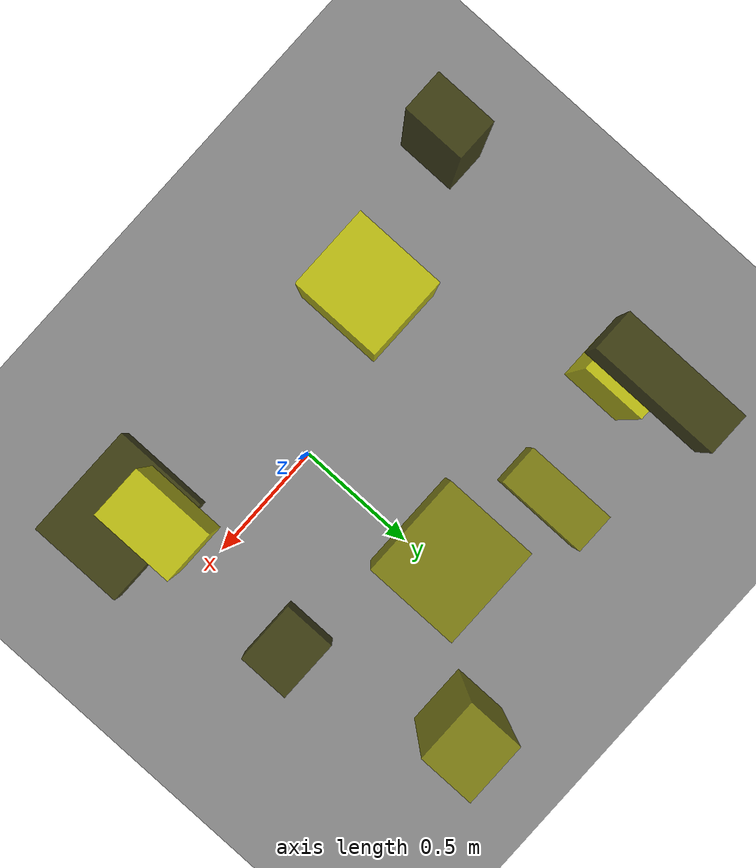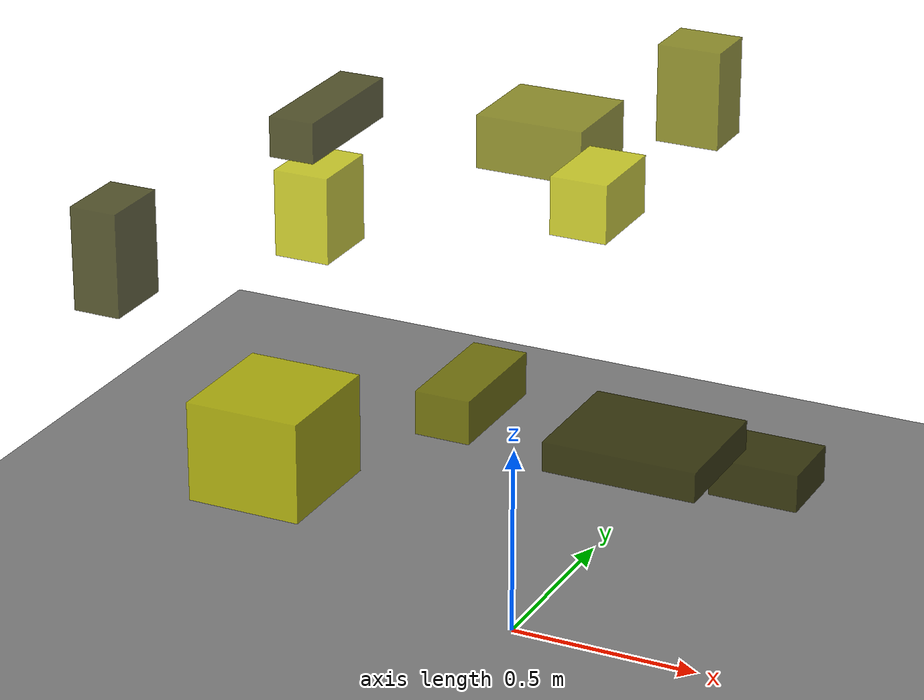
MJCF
<?xml version="1.0"?>
<mujoco model="obstacle_scene">
  <compiler angle="radian" coordinate="local"/>
  <option timestep="0.001" gravity="0 0 -9.81"/>

  <asset>
    <material name="obstacle_mat" rgba="0.8 0.8 0.0 0.8"/>
    <material name="ground_mat" rgba="0.5 0.5 0.5 1"/>
  </asset>

  <worldbody>
    <!-- Ground plane -->
    <geom name="ground" type="plane" size="3 3 0.1" material="ground_mat"/>

    <!-- Obstacles -->
    <body name="obstacle_0" pos="-0.952534 -0.278088 0.965198">
      <geom name="obs_0" type="box" size="0.062869 0.094829 0.135848" rgba="0.2 0.2 0.0 0.8"/>
    </body>
    <body name="obstacle_1" pos="-0.483371 0.759836 0.246730">
      <geom name="obs_1" type="box" size="0.080334 0.181275 0.063023" rgba="0.5 0.5 0.0 0.8"/>
    </body>
    <body name="obstacle_2" pos="0.263667 -0.117255 1.262564">
      <geom name="obs_2" type="box" size="0.070689 0.111452 0.071536" rgba="0.8 0.8 0.0 0.8"/>
    </body>
    <body name="obstacle_3" pos="0.460976 -0.271784 0.727627">
      <geom name="obs_3" type="box" size="0.189867 0.157187 0.036982" rgba="0.2 0.2 0.0 0.8"/>
    </body>
    <body name="obstacle_4" pos="0.159159 0.751614 1.226422">
      <geom name="obs_4" type="box" size="0.083915 0.073505 0.128461" rgba="0.5 0.5 0.0 0.8"/>
    </body>
    <body name="obstacle_5" pos="-0.559367 -0.201668 0.507001">
      <geom name="obs_5" type="box" size="0.151579 0.166330 0.132096" rgba="0.8 0.8 0.0 0.8"/>
    </body>
    <body name="obstacle_6" pos="0.513775 0.401174 0.382560">
      <geom name="obs_6" type="box" size="0.117428 0.097893 0.049966" rgba="0.2 0.2 0.0 0.8"/>
    </body>
    <body name="obstacle_7" pos="-0.120273 0.458771 1.157213">
      <geom name="obs_7" type="box" size="0.142987 0.129868 0.069717" rgba="0.5 0.5 0.0 0.8"/>
    </body>
    <body name="obstacle_8" pos="-0.821891 0.535295 0.818090">
      <geom name="obs_8" type="box" size="0.077997 0.103222 0.120080" rgba="0.8 0.8 0.0 0.8"/>
    </body>
    <body name="obstacle_9" pos="-0.824729 0.591014 1.046423">
      <geom name="obs_9" type="box" size="0.063668 0.198201 0.055339" rgba="0.2 0.2 0.0 0.8"/>
    </body>
  </worldbody>
</mujoco>
